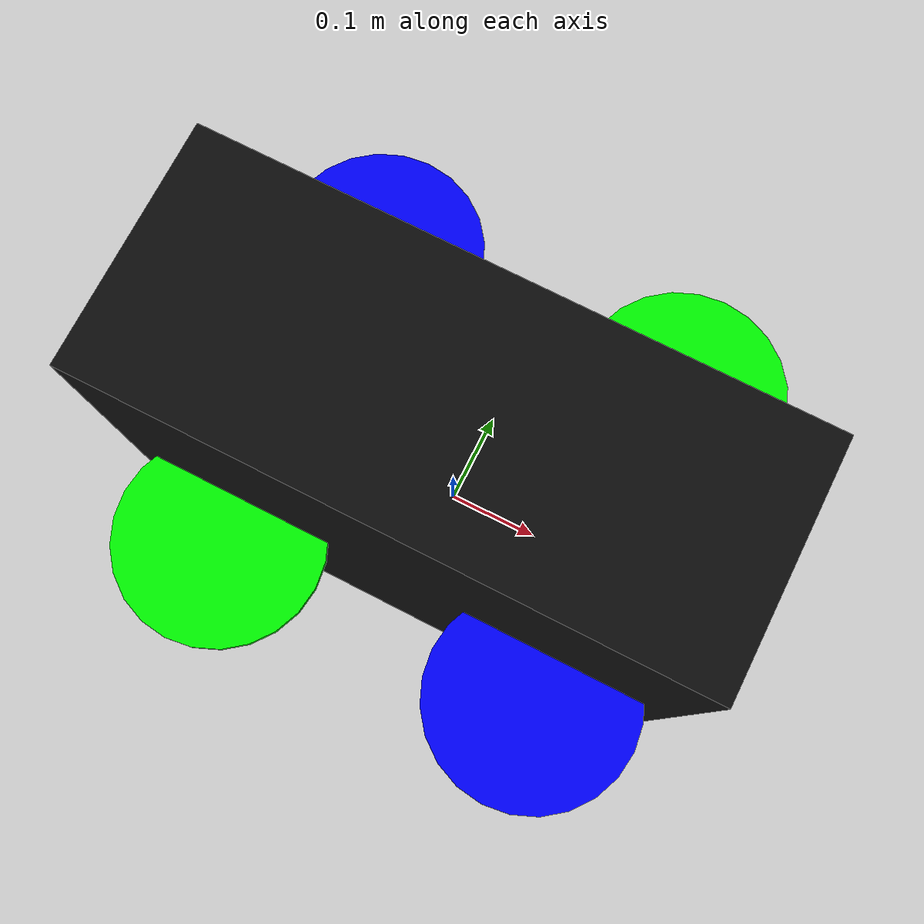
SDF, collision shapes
<?xml version='1.0'?>
<sdf version="1.9">
  <model name="uav_with_gimbal">
    <include>
      <uri>model://uav_with_standoffs</uri>
    </include>

    <include>
      <uri>model://camera</uri>
      <name>camera</name>
      <pose degrees="true">0 0 0.04 0 0 0</pose>
    </include>

    <joint name="camera_fixed_joint" type="fixed">
      <parent>uav_with_standoffs::base_link</parent>
      <child>camera::camera_link</child>
    </joint>

    <plugin filename="gz-sim-joint-state-publisher-system"
      name="gz::sim::systems::JointStatePublisher">
    </plugin>
    <plugin filename="gz-sim-lift-drag-system"
        name="gz::sim::systems::LiftDrag">
      <a0>0.3</a0>
      <alpha_stall>1.4</alpha_stall>
      <cla>4.25</cla>
      <cda>0.10</cda>
      <cma>0.0</cma>
      <cla_stall>-0.025</cla_stall>
      <cda_stall>0.0</cda_stall>
      <cma_stall>0.0</cma_stall>
      <area>0.002</area>
      <air_density>1.2041</air_density>
      <cp>0.084 0 0</cp>
      <forward>0 1 0</forward>
      <upward>0 0 1</upward>
      <link_name>uav_with_standoffs::rotor_0</link_name>
    </plugin>
    <plugin filename="gz-sim-lift-drag-system"
        name="gz::sim::systems::LiftDrag">
      <a0>0.3</a0>
      <alpha_stall>1.4</alpha_stall>
      <cla>4.25</cla>
      <cda>0.10</cda>
      <cma>0.0</cma>
      <cla_stall>-0.025</cla_stall>
      <cda_stall>0.0</cda_stall>
      <cma_stall>0.0</cma_stall>
      <area>0.002</area>
      <air_density>1.2041</air_density>
      <cp>-0.084 0 0</cp>
      <forward>0 -1 0</forward>
      <upward>0 0 1</upward>
      <link_name>uav_with_standoffs::rotor_0</link_name>
    </plugin>

    <plugin filename="gz-sim-lift-drag-system"
        name="gz::sim::systems::LiftDrag">
      <a0>0.3</a0>
      <alpha_stall>1.4</alpha_stall>
      <cla>4.25</cla>
      <cda>0.10</cda>
      <cma>0.0</cma>
      <cla_stall>-0.025</cla_stall>
      <cda_stall>0.0</cda_stall>
      <cma_stall>0.0</cma_stall>
      <area>0.002</area>
      <air_density>1.2041</air_density>
      <cp>0.084 0 0</cp>
      <forward>0 1 0</forward>
      <upward>0 0 1</upward>
      <link_name>uav_with_standoffs::rotor_1</link_name>
    </plugin>
    <plugin filename="gz-sim-lift-drag-system"
        name="gz::sim::systems::LiftDrag">
      <a0>0.3</a0>
      <alpha_stall>1.4</alpha_stall>
      <cla>4.25</cla>
      <cda>0.10</cda>
      <cma>0.0</cma>
      <cla_stall>-0.025</cla_stall>
      <cda_stall>0.0</cda_stall>
      <cma_stall>0.0</cma_stall>
      <area>0.002</area>
      <air_density>1.2041</air_density>
      <cp>-0.084 0 0</cp>
      <forward>0 -1 0</forward>
      <upward>0 0 1</upward>
      <link_name>uav_with_standoffs::rotor_1</link_name>
    </plugin>

    <plugin filename="gz-sim-lift-drag-system"
        name="gz::sim::systems::LiftDrag">
      <a0>0.3</a0>
      <alpha_stall>1.4</alpha_stall>
      <cla>4.25</cla>
      <cda>0.10</cda>
      <cma>0.0</cma>
      <cla_stall>-0.025</cla_stall>
      <cda_stall>0.0</cda_stall>
      <cma_stall>0.0</cma_stall>
      <area>0.002</area>
      <air_density>1.2041</air_density>
      <cp>0.084 0 0</cp>
      <forward>0 -1 0</forward>
      <upward>0 0 1</upward>
      <link_name>uav_with_standoffs::rotor_2</link_name>
    </plugin>
    <plugin filename="gz-sim-lift-drag-system"
        name="gz::sim::systems::LiftDrag">
      <a0>0.3</a0>
      <alpha_stall>1.4</alpha_stall>
      <cla>4.25</cla>
      <cda>0.10</cda>
      <cma>0.0</cma>
      <cla_stall>-0.025</cla_stall>
      <cda_stall>0.0</cda_stall>
      <cma_stall>0.0</cma_stall>
      <area>0.002</area>
      <air_density>1.2041</air_density>
      <cp>-0.084 0 0</cp>
      <forward>0 1 0</forward>
      <upward>0 0 1</upward>
      <link_name>uav_with_standoffs::rotor_2</link_name>
    </plugin>

    <plugin filename="gz-sim-lift-drag-system"
        name="gz::sim::systems::LiftDrag">
      <a0>0.3</a0>
      <alpha_stall>1.4</alpha_stall>
      <cla>4.25</cla>
      <cda>0.10</cda>
      <cma>0.0</cma>
      <cla_stall>-0.025</cla_stall>
      <cda_stall>0.0</cda_stall>
      <cma_stall>0.0</cma_stall>
      <area>0.002</area>
      <air_density>1.2041</air_density>
      <cp>0.084 0 0</cp>
      <forward>0 -1 0</forward>
      <upward>0 0 1</upward>
      <link_name>uav_with_standoffs::rotor_3</link_name>
    </plugin>
    <plugin filename="gz-sim-lift-drag-system"
        name="gz::sim::systems::LiftDrag">
      <a0>0.3</a0>
      <alpha_stall>1.4</alpha_stall>
      <cla>4.25</cla>
      <cda>0.10</cda>
      <cma>0.0</cma>
      <cla_stall>-0.025</cla_stall>
      <cda_stall>0.0</cda_stall>
      <cma_stall>0.0</cma_stall>
      <area>0.002</area>
      <air_density>1.2041</air_density>
      <cp>-0.084 0 0</cp>
      <forward>0 1 0</forward>
      <upward>0 0 1</upward>
      <link_name>uav_with_standoffs::rotor_3</link_name>
    </plugin>

    <plugin filename="gz-sim-apply-joint-force-system"
      name="gz::sim::systems::ApplyJointForce">
      <joint_name>uav_with_standoffs::rotor_0_joint</joint_name>
    </plugin>
    <plugin filename="gz-sim-apply-joint-force-system"
      name="gz::sim::systems::ApplyJointForce">
      <joint_name>uav_with_standoffs::rotor_1_joint</joint_name>
    </plugin>
    <plugin filename="gz-sim-apply-joint-force-system"
      name="gz::sim::systems::ApplyJointForce">
      <joint_name>uav_with_standoffs::rotor_2_joint</joint_name>
    </plugin>
    <plugin filename="gz-sim-apply-joint-force-system"
      name="gz::sim::systems::ApplyJointForce">
      <joint_name>uav_with_standoffs::rotor_3_joint</joint_name>
    </plugin>

    <plugin name="ArduPilotPlugin"
      filename="ArduPilotPlugin">
      <!-- Port settings -->
      <fdm_addr>127.0.0.1</fdm_addr>
      <fdm_port_in>9002</fdm_port_in>
      <connectionTimeoutMaxCount>5</connectionTimeoutMaxCount>
      <lock_step>1</lock_step>

      <modelXYZToAirplaneXForwardZDown degrees="true">0 0 0 180 0 0</modelXYZToAirplaneXForwardZDown>
      <gazeboXYZToNED degrees="true">0 0 0 180 0 90</gazeboXYZToNED>

      <!-- Sensors -->
      <imuName>uav_with_standoffs::imu_link::imu_sensor</imuName>

      <control channel="0">
        <jointName>uav_with_standoffs::rotor_0_joint</jointName>
        <useForce>1</useForce>
        <multiplier>838</multiplier>
        <offset>0</offset>
        <servo_min>1100</servo_min>
        <servo_max>1900</servo_max>
        <type>VELOCITY</type>
        <p_gain>0.2</p_gain>
        <i_gain>0</i_gain>
        <d_gain>0</d_gain>
        <i_max>0</i_max>
        <i_min>0</i_min>
        <cmd_max>2.5</cmd_max>
        <cmd_min>-2.5</cmd_min>
        <controlVelocitySlowdownSim>1</controlVelocitySlowdownSim>
      </control>

      <control channel="1">
        <jointName>uav_with_standoffs::rotor_1_joint</jointName>
        <useForce>1</useForce>
        <multiplier>838</multiplier>
        <offset>0</offset>
        <servo_min>1100</servo_min>
        <servo_max>1900</servo_max>
        <type>VELOCITY</type>
        <p_gain>0.2</p_gain>
        <i_gain>0</i_gain>
        <d_gain>0</d_gain>
        <i_max>0</i_max>
        <i_min>0</i_min>
        <cmd_max>2.5</cmd_max>
        <cmd_min>-2.5</cmd_min>
        <controlVelocitySlowdownSim>1</controlVelocitySlowdownSim>
      </control>

      <control channel="2">
        <jointName>uav_with_standoffs::rotor_2_joint</jointName>
        <useForce>1</useForce>
        <multiplier>-838</multiplier>
        <offset>0</offset>
        <servo_min>1100</servo_min>
        <servo_max>1900</servo_max>
        <type>VELOCITY</type>
        <p_gain>0.2</p_gain>
        <i_gain>0</i_gain>
        <d_gain>0</d_gain>
        <i_max>0</i_max>
        <i_min>0</i_min>
        <cmd_max>2.5</cmd_max>
        <cmd_min>-2.5</cmd_min>
        <controlVelocitySlowdownSim>1</controlVelocitySlowdownSim>
      </control>

      <control channel="3">
        <jointName>uav_with_standoffs::rotor_3_joint</jointName>
        <useForce>1</useForce>
        <multiplier>-838</multiplier>
        <offset>0</offset>
        <servo_min>1100</servo_min>
        <servo_max>1900</servo_max>
        <type>VELOCITY</type>
        <p_gain>0.2</p_gain>
        <i_gain>0</i_gain>
        <d_gain>0</d_gain>
        <i_max>0</i_max>
        <i_min>0</i_min>
        <cmd_max>2.5</cmd_max>
        <cmd_min>-2.5</cmd_min>
        <controlVelocitySlowdownSim>1</controlVelocitySlowdownSim>
      </control>
    </plugin>

  </model>
</sdf>

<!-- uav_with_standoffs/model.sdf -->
<sdf version='1.9'>
  <model name='uav_with_standoffs'>
    <pose degrees="true">0 0 0.12 0 0 0</pose>  <!-- se aumentó 12 cm debido a la distancia entre la parte inferior de frame_above a la parte más baja de las patas-->
    <link name='base_link'>
      <velocity_decay>
        <linear>0.0</linear>
        <angular>0.0</angular>
      </velocity_decay>
      <inertial>
        <pose>-0.001815 0.001618 -0.019858 0 0 0</pose>
        <mass>2.0681</mass>
        <inertia>         <!--Los valores de la matriz de inercia se han calculado a partir de un modelo CAD-->
          <ixx>0.012424295</ixx>
          <ixy>0.000073681</ixy>
          <ixz>0.000240779</ixz>
          <iyy>0.014159877</iyy>
          <iyz>0.000059114</iyz>
          <izz>0.021782661</izz>
        </inertia>
      </inertial>
      <collision name='base_collision'>
        <pose>0 -0.008 0 0 0 0</pose>         <!--En el eje Z hay una distancia desde el origen del modelo hasta la parte más baja de las patas de 12 cm y 8mm más, para evitar sobreposicionamiento-->
        <geometry>
          <box>
            <size>0.6 0.24 0.6</size>
          </box>
        </geometry>
        <surface>
          <contact>
            <ode>
              <max_vel>100.0</max_vel>
              <min_depth>0.001</min_depth>
            </ode>
          </contact>
          <friction>
            <ode>
              <mu>1</mu>
              <mu2>1</mu2>
            </ode>
          </friction>
        </surface>
      </collision>
      <visual name='base_visual'>
        <geometry>
          <mesh>
            <uri>model://uav_with_standoffs/meshes/UAV.obj</uri>
          </mesh>
        </geometry>
        <material>
          <ambient>0.05 0.05 0.05</ambient>
          <diffuse>0.05 0.05 0.05</diffuse>
          <specular>1 1 1 1</specular>
          <pbr>
            <metal>
              <metalness>0.5</metalness>
              <roughness>0.5</roughness>
            </metal>
          </pbr>
        </material>
      </visual>
    </link>

    <link name='imu_link'>
      <inertial>
        <pose>0 0 0 0 0 0</pose>
        <mass>0.001</mass>
        <inertia>
          <ixx>0.00001</ixx>
          <ixy>0</ixy>
          <ixz>0</ixz>
          <iyy>0.00001</iyy>
          <iyz>0</iyz>
          <izz>0.00001</izz>
        </inertia>
      </inertial>
      <sensor name="imu_sensor" type="imu">
        <gz_frame_id>imu_link</gz_frame_id>
        <pose degrees="true">0 0 0 180 0 0</pose>
        <always_on>1</always_on>
        <update_rate>1000.0</update_rate>
      </sensor>
    </link>

    <joint name='imu_joint' type='revolute'>
      <child>imu_link</child>
      <parent>base_link</parent>
      <axis>
        <xyz>0 0 1</xyz>
        <limit>
          <lower>0</lower>
          <upper>0</upper>
          <effort>0</effort>
          <velocity>0</velocity>
        </limit>
        <dynamics>
          <damping>1.0</damping>
        </dynamics>
      </axis>
    </joint>

    <link name='rotor_0'>
      <pose>0.1737665 -0.1737665 0.03 0 0 0</pose>
      <inertial>
        <pose>0 0 0.004 0 0 0</pose>
        <mass>0.0148</mass>
        <inertia>
          <ixx>21.864e-06</ixx>
          <ixy>0</ixy>
          <ixz>0</ixz>
          <iyy>43.57e-06</iyy>
          <iyz>0</iyz>
          <izz>21.811e-06</izz>
        </inertia>
      </inertial>
      <collision name='rotor_0_collision'>
        <pose>0 0 0.004 0 0 0</pose>
        <geometry>
          <cylinder>
            <length>0.008</length>
            <radius>0.109</radius>  <!--El radio de collision es un poco más grande que el radio de 0.10795m de la hélice y altura de 8mm-->
          </cylinder>
        </geometry>
        <surface>
          <contact>
            <ode/>
          </contact>
          <friction>
            <ode/>
          </friction>
        </surface>
      </collision>
      <visual name='rotor_0_visual'>
        <pose>0 0 0 0 0 0</pose>
        <geometry>
          <mesh>
            <scale>1 1 1</scale>
            <uri>model://uav_with_standoffs/meshes/Prop.obj</uri>
          </mesh>
        </geometry>
        <material>
          <ambient>0 0 1</ambient>
          <diffuse>0 0 1</diffuse>
          <specular>1 1 1 1</specular>
          <pbr>
            <metal>
              <metalness>0.5</metalness>
              <roughness>0.5</roughness>
            </metal>
          </pbr>
        </material>
      </visual>
      <gravity>1</gravity>
      <velocity_decay/>
      <self_collide>0</self_collide>
    </link>
    <joint name='rotor_0_joint' type='revolute'>
      <child>rotor_0</child>
      <parent>base_link</parent>
      <axis>
        <xyz>0 0 1</xyz>
        <limit>
          <lower>-1e+16</lower>
          <upper>1e+16</upper>
        </limit>
        <dynamics>
          <damping>0.004</damping>
        </dynamics>
      </axis>
      <physics>
        <ode>
          <implicit_spring_damper>1</implicit_spring_damper>
        </ode>
      </physics>
    </joint>

    <link name='rotor_1'>
      <pose>-0.1737665 0.1737665 0.03 0 0 0</pose>
      <inertial>
        <pose>0 0 0.004 0 0 0</pose>
        <mass>0.0148</mass>
        <inertia>
          <ixx>21.864e-06</ixx>
          <ixy>0</ixy>
          <ixz>0</ixz>
          <iyy>43.57e-06</iyy>
          <iyz>0</iyz>
          <izz>21.811e-06</izz>
        </inertia>
      </inertial>
      <collision name='rotor_1_collision'>
        <pose>0 0 0.004 0 0 0</pose>
        <geometry>
          <cylinder>
            <length>0.008</length>
            <radius>0.109</radius>
          </cylinder>
        </geometry>
        <surface>
          <contact>
            <ode/>
          </contact>
          <friction>
            <ode/>
          </friction>
        </surface>
      </collision>
      <visual name='rotor_1_visual'>
        <pose>0 0 0 0 0 0</pose>
        <geometry>
          <mesh>
            <scale>1 1 1</scale>
            <uri>model://uav_with_standoffs/meshes/Prop.obj</uri>
          </mesh>
        </geometry>
        <material>
          <ambient>0 0 1 1</ambient>
          <diffuse>0 0 1 1</diffuse>
          <specular>1 1 1 1</specular>
          <pbr>
            <metal>
              <metalness>0.5</metalness>
              <roughness>0.5</roughness>
            </metal>
          </pbr>
        </material>
      </visual>
      <gravity>1</gravity>
      <velocity_decay/>
      <self_collide>0</self_collide>
    </link>
    <joint name='rotor_1_joint' type='revolute'>
      <child>rotor_1</child>
      <parent>base_link</parent>
      <axis>
        <xyz>0 0 1</xyz>
        <limit>
          <lower>-1e+16</lower>
          <upper>1e+16</upper>
        </limit>
        <dynamics>
          <damping>0.004</damping>
        </dynamics>
      </axis>
      <physics>
        <ode>
          <implicit_spring_damper>1</implicit_spring_damper>
        </ode>
      </physics>
    </joint>

    <link name='rotor_2'>
      <pose>0.1737665 0.1737665 0.03 0 0 0</pose>
      <inertial>
        <pose>0 0 0.004 0 0 0</pose>
        <mass>0.0148</mass>
        <inertia>
          <ixx>21.864e-06</ixx>
          <ixy>0</ixy>
          <ixz>0</ixz>
          <iyy>43.57e-06</iyy>
          <iyz>0</iyz>
          <izz>21.811e-06</izz>
        </inertia>
      </inertial>
      <collision name='rotor_2_collision'>
        <pose>0 0 0.004 0 0 0</pose>
        <geometry>
          <cylinder>
            <length>0.008</length>
            <radius>0.109</radius>
          </cylinder>
        </geometry>
        <surface>
          <contact>
            <ode/>
          </contact>
          <friction>
            <ode/>
          </friction>
        </surface>
      </collision>
      <visual name='rotor_2_visual'>
        <pose>0 0 0 0 0 0</pose>
        <geometry>
          <mesh>
            <scale>1 1 1</scale>
            <uri>model://uav_with_standoffs/meshes/Prop.obj</uri>
          </mesh>
        </geometry>
        <material>
          <ambient>0 1 0</ambient>
          <diffuse>0 1 0</diffuse>
          <specular>1 1 1 1</specular>
          <pbr>
            <metal>
              <metalness>0.5</metalness>
              <roughness>0.5</roughness>
            </metal>
          </pbr>
        </material>
      </visual>
      <gravity>1</gravity>
      <velocity_decay/>
      <self_collide>0</self_collide>
    </link>
    <joint name='rotor_2_joint' type='revolute'>
      <child>rotor_2</child>
      <parent>base_link</parent>
      <axis>
        <xyz>0 0 1</xyz>
        <limit>
          <lower>-1e+16</lower>
          <upper>1e+16</upper>
        </limit>
        <dynamics>
          <damping>0.004</damping>
        </dynamics>
      </axis>
      <physics>
        <ode>
          <implicit_spring_damper>1</implicit_spring_damper>
        </ode>
      </physics>
    </joint>

    <link name='rotor_3'>
      <pose>-0.1737665 -0.1737665 0.03 0 0 0</pose>
      <inertial>
        <pose>0 0.004 0 0 0 0</pose>
        <mass>0.0148</mass>
        <inertia>
          <ixx>21.864e-06</ixx>
          <ixy>0</ixy>
          <ixz>0</ixz>
          <iyy>43.57e-06</iyy>
          <iyz>0</iyz>
          <izz>21.811e-06</izz>
        </inertia>
      </inertial>
      <collision name='rotor_3_collision'>
        <pose>0 0 0.004 0 0 0</pose>
        <geometry>
          <cylinder>
            <length>0.008</length>
            <radius>0.109</radius>
          </cylinder>
        </geometry>
        <surface>
          <contact>
            <ode/>
          </contact>
          <friction>
            <ode/>
          </friction>
        </surface>
      </collision>
      <visual name='rotor_3_visual'>
        <pose>0 0 0 0 0 0</pose>
        <geometry>
          <mesh>
            <scale>1 1 1</scale>
            <uri>model://uav_with_standoffs/meshes/Prop.obj</uri>
          </mesh>
        </geometry>
        <material>
          <ambient>0 1 0</ambient>
          <diffuse>0 1 0</diffuse>
          <specular>1 1 1 1</specular>
          <pbr>
            <metal>
              <metalness>0.5</metalness>
              <roughness>0.5</roughness>
            </metal>
          </pbr>
        </material>
      </visual>
      <gravity>1</gravity>
      <velocity_decay/>
      <self_collide>0</self_collide>
    </link>
    <joint name='rotor_3_joint' type='revolute'>
      <child>rotor_3</child>
      <parent>base_link</parent>
      <axis>
        <xyz>0 0 1</xyz>
        <limit>
          <lower>-1e+16</lower>
          <upper>1e+16</upper>
        </limit>
        <dynamics>
          <damping>0.004</damping>
        </dynamics>
      </axis>
      <physics>
        <ode>
          <implicit_spring_damper>1</implicit_spring_damper>
        </ode>
      </physics>
    </joint>

  </model>
</sdf>

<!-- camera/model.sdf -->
<sdf version="1.9">
  <model name="camera">
    <pose>0 0 0 0 0 0</pose>

    <link name="camera_link">
      <inertial>
        <mass>0.01</mass>
        <inertia>
          <ixx>0.000001</ixx>
          <ixy>0</ixy>
          <ixz>0</ixz>
          <iyy>0.000001</iyy>
          <iyz>0</iyz>
          <izz>0.000001</izz>
        </inertia>
      </inertial>

      <visual name="camera_body_visual">
        <geometry>
          <box>
            <size>0.025 0.025 0.004</size>  <!-- tamaño de cámara raspberry -->
          </box>
        </geometry>
        <material>
          <ambient>0.1 0.1 0.1 1</ambient>
          <diffuse>0.1 0.1 0.1 1</diffuse>
          <specular>0.01 0.01 0.01 1</specular>
        </material>
      </visual>

      <collision name="camera_body_collision">
        <geometry>
          <box>
            <size>0.025 0.025 0.004</size>
          </box>
        </geometry>
      </collision>

      <sensor name="camera" type="camera">
        <gz_frame_id>camera_link</gz_frame_id>    <!-- ID del marco de referencia para la cámara -->
        <pose degrees="true">0 0 0 90 90 0</pose>
        <camera>
          <horizontal_fov>1.19</horizontal_fov>   <!-- Campo de visión horizontal de la cámara (en radianes) -->
          <image>
            <width>960</width>
            <height>960</height>
          </image>
          <clip>
            <near>0.1</near>
            <far>10</far>
          </clip>
        </camera>
        <always_on>1</always_on>
        <update_rate>60</update_rate>
        <visualize>1</visualize>
        <enable_streaming>true</enable_streaming>

        <plugin filename="CameraZoomPlugin"
                name="CameraZoomPlugin">
          <max_zoom>10.0</max_zoom>
          <slew_rate>0.42514285714</slew_rate>
        </plugin>

        <plugin name="GstCameraPlugin"
                filename="GstCameraPlugin">
          <udp_host>127.0.0.1</udp_host>
          <udp_port>5600</udp_port>
          <use_basic_pipeline>true</use_basic_pipeline>
          <use_cuda>true</use_cuda>
        </plugin>
      </sensor>
    </link>
  </model>
</sdf>
